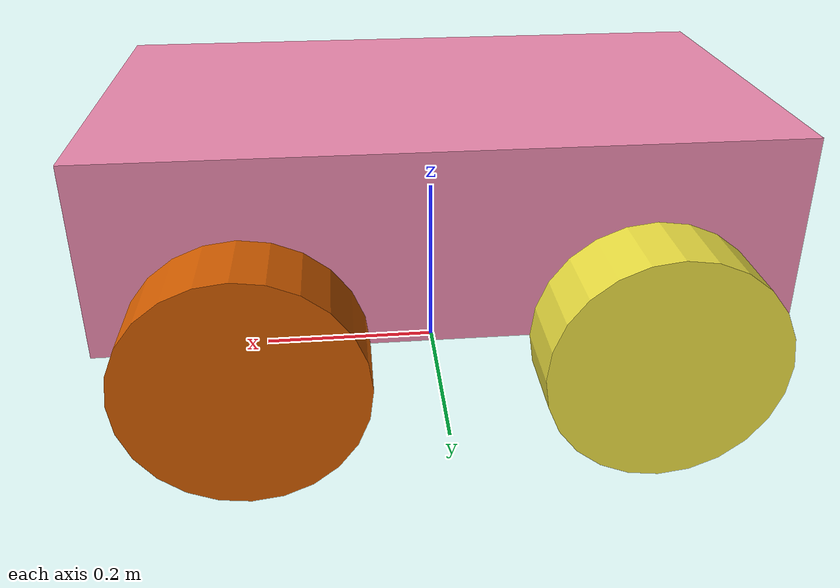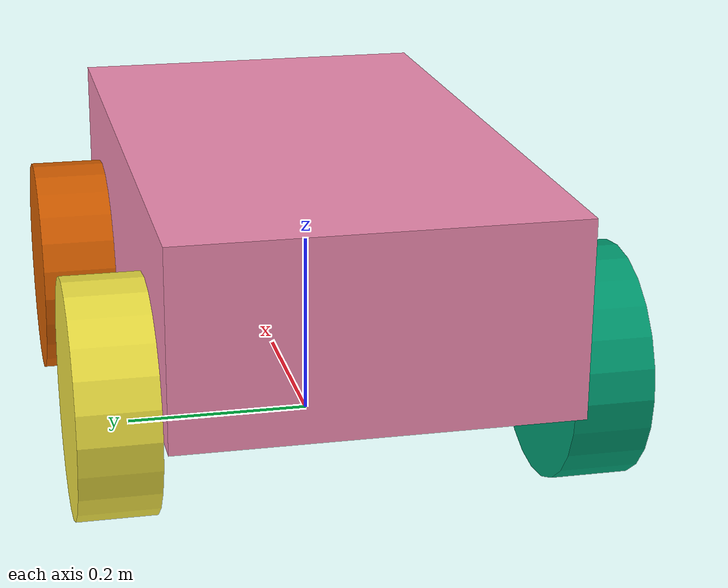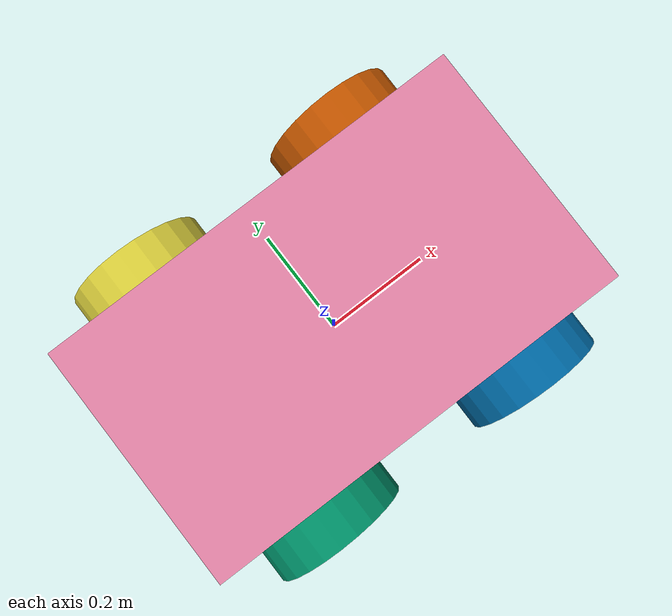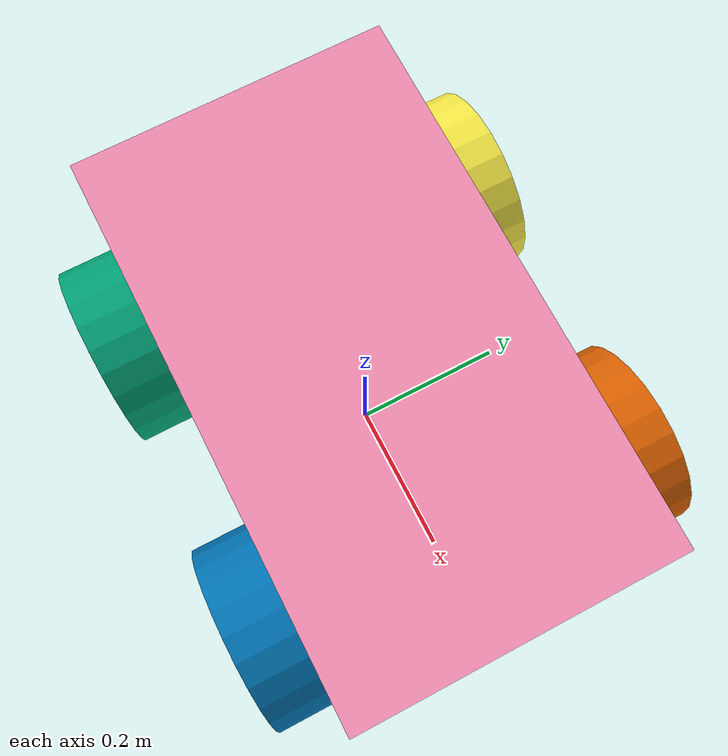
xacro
<?xml version="1.0"?>
<robot xmlns:xacro="http://www.ros.org/wiki/xacro">

    <xacro:property name="base_length" value="0.7" />
    <xacro:property name="base_width" value="0.4" />
    <xacro:property name="base_height" value="0.2" />
    <xacro:property name="wheel_radius" value="0.12" />
    <xacro:property name="wheel_length" value="0.08" />

    <link name="base_footprint" />

    <link name="base_link">
        <visual>
            <geometry>
                <box size="${base_length} ${base_width} ${base_height}" />
            </geometry>
            <origin xyz="0 0 ${base_height / 2.0}" rpy="0 0 0" />
            <material name="pink" />
        </visual>
        <collision>
            <geometry>
                <box size="${base_length} ${base_width} ${base_height}" />
            </geometry>
            <origin xyz="0 0 ${base_height / 2.0}" rpy="0 0 0" />
        </collision>
        <xacro:box_inertia m="5.0" l="${2*base_length}" w="${base_width}" h="${base_height}"
                           xyz="0 0 ${base_height / 2.0}" rpy="0 0 0" />
    </link>

    <xacro:macro name="wheel_link" params="prefix">
        <link name="${prefix}_wheel_link">
            <visual>
                <geometry>
                    <cylinder radius="${wheel_radius}" length="${wheel_length}" />
                </geometry>
                <origin xyz="0 0 0" rpy="${pi / 2.0} 0 0" />
                <material name="violet" />
            </visual>
            <collision>
                <geometry>
                    <cylinder radius="${wheel_radius}" length="${wheel_length}" />
                </geometry>
                <origin xyz="0 0 0" rpy="${pi / 2.0} 0 0" />
            </collision>
            <xacro:cylinder_inertia m="2.0" r="${wheel_radius}" h="${wheel_length}"
                                    xyz="0 0 0" rpy="${pi / 2.0} 0 0" />
        </link>
    </xacro:macro>

    <xacro:wheel_link prefix="back_right" />
    <xacro:wheel_link prefix="back_left" />
    <xacro:wheel_link prefix="front_right" />
    <xacro:wheel_link prefix="front_left" />

    <joint name="base_joint" type="fixed">
        <parent link="base_footprint" />
        <child link="base_link" />
        <origin xyz="0 0 ${wheel_radius}" rpy="0 0 0"/>
    </joint>

    <joint name="back_right_joint" type="continuous">
        <parent link="base_link" />
        <child link="back_right_wheel_link" />
        <origin xyz="${-base_length / 3.5} ${-(base_width + wheel_length) / 2.0} 0" rpy="0 0 0" />
        <axis xyz="0 1 0" />
    </joint>

    <joint name="back_left_joint" type="continuous">
        <parent link="base_link" />
        <child link="back_left_wheel_link" />
        <origin xyz="${-base_length / 3.5} ${(base_width + wheel_length) / 2.0} 0" rpy="0 0 0" />
        <axis xyz="0 1 0" />
    </joint>

    <joint name="front_right_joint" type="continuous">
        <parent link="base_link" />
        <child link="front_right_wheel_link" />
        <origin xyz="${base_length / 3.5} ${-(base_width + wheel_length) / 2.0} 0" rpy="0 0 0" />
        <axis xyz="0 1 0" />
    </joint>

    <joint name="front_left_joint" type="continuous">
        <parent link="base_link" />
        <child link="front_left_wheel_link" />
        <origin xyz="${base_length / 3.5} ${(base_width + wheel_length) / 2.0} 0" rpy="0 0 0" />
        <axis xyz="0 1 0" />
    </joint>

</robot>
